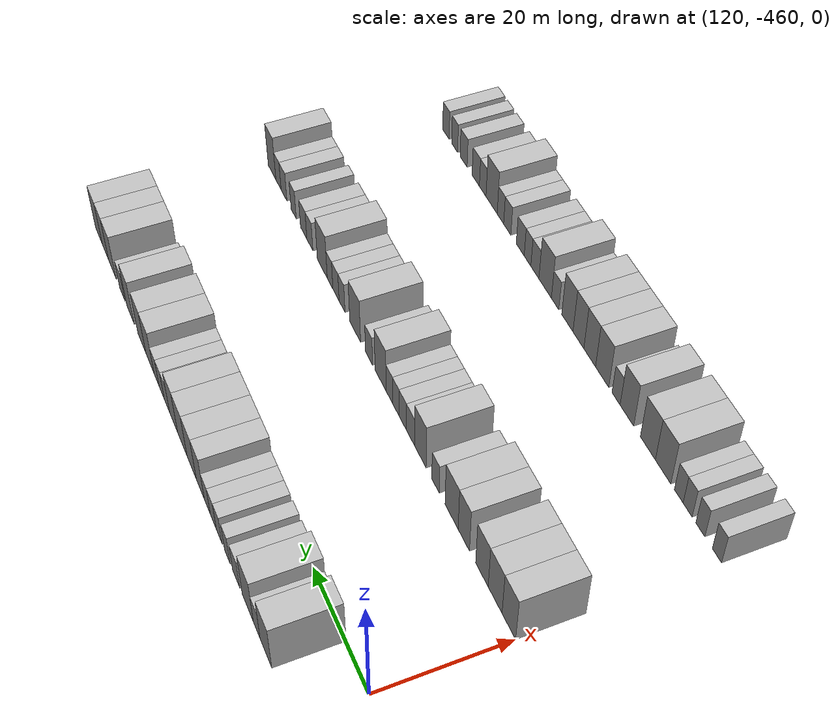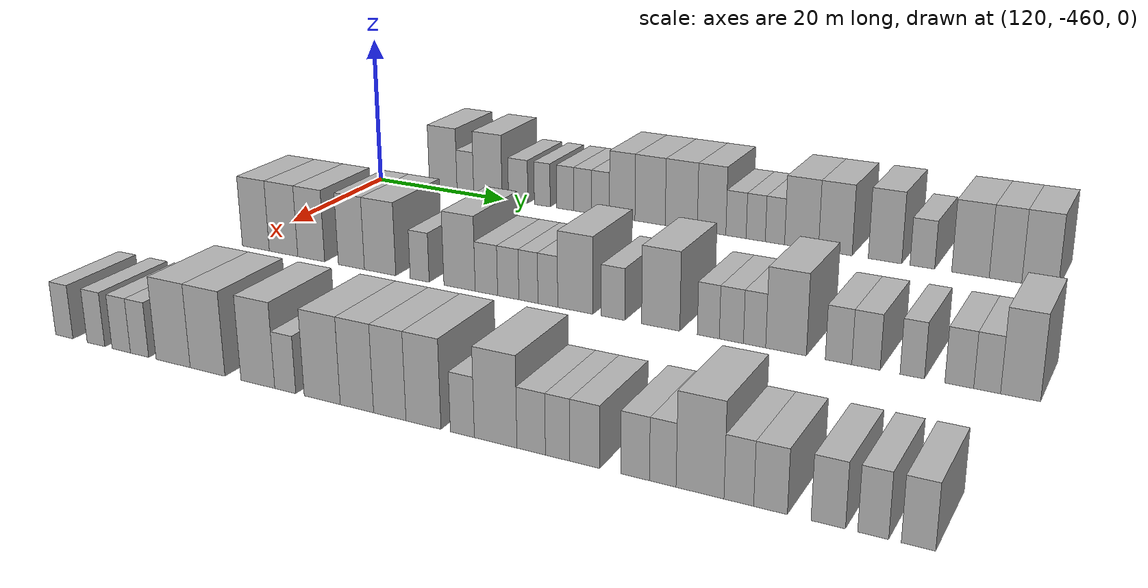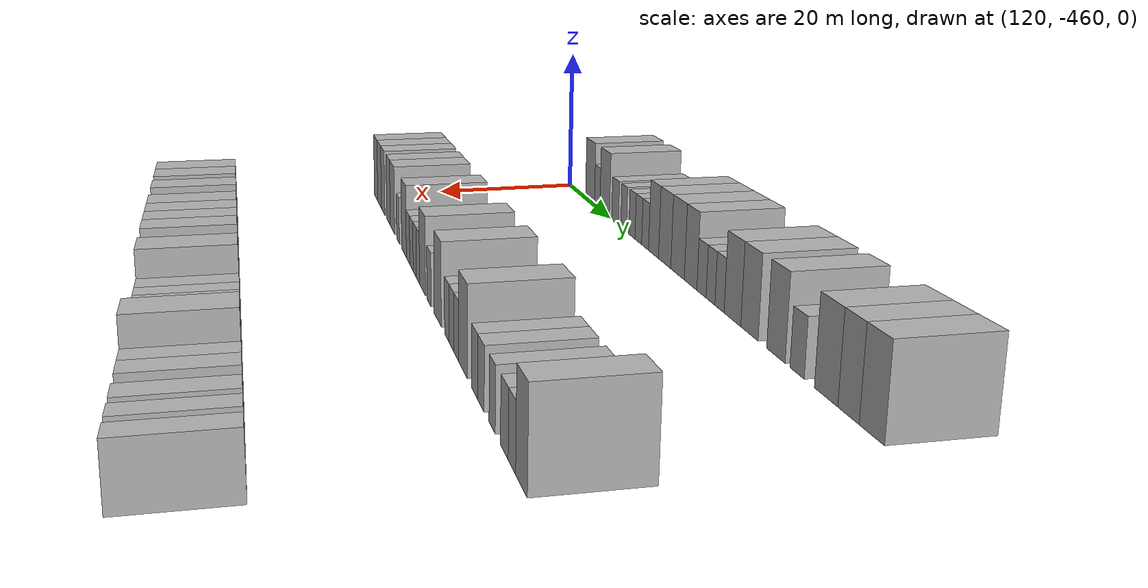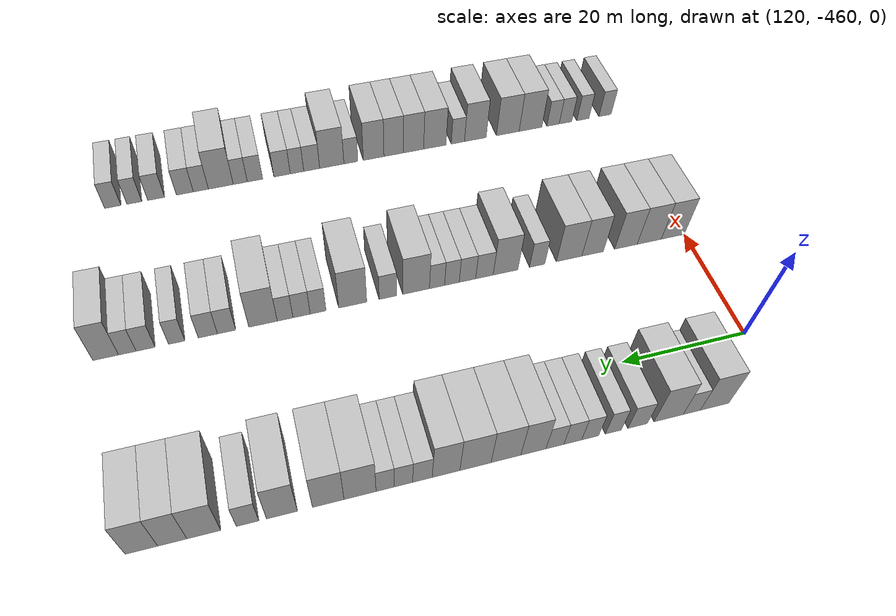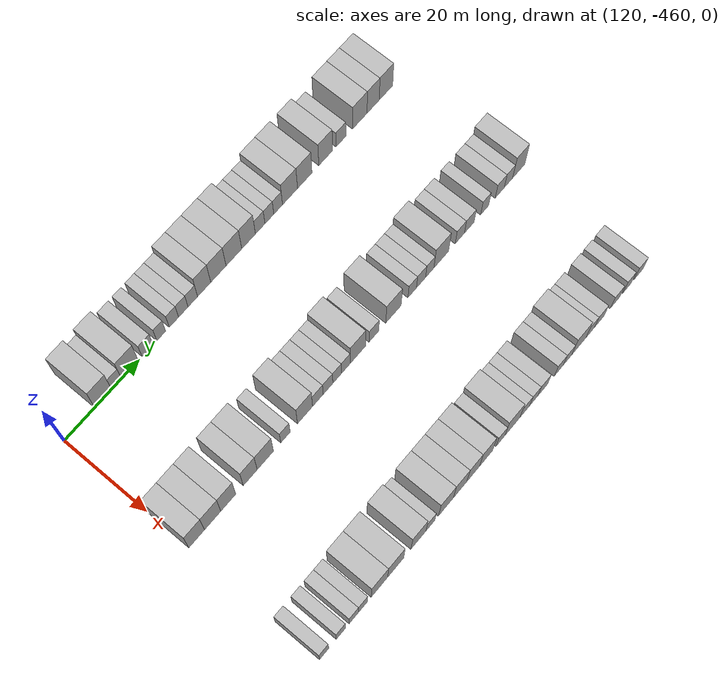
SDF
<sdf version="1.6">
 <world name="default">
  <model name="building_678">
   <static>1</static>
   <pose>115.0000 -449.6989 0 0.000000 0.000000 0.000000</pose>
   <link name="link">
    <pose>0 0 4.50 0 0 0</pose>
    <collision name="collision"><geometry><box><size>10.0000 4.4808 9.0000</size></box></geometry></collision>
    <visual name="visual">
     <cast_shadows>0</cast_shadows>
     <geometry><box><size>10.0000 4.4808 9.0000</size></box></geometry>
     <material>
      <script>
       <uri>model://HANNAS_wall/materials/scripts</uri>
       <uri>model://HANNAS_wall/materials/textures</uri>
       <name>vrc/HANNAS_wall</name>
      </script>
     </material>
    </visual>
   </link>
  </model>
  <model name="building_679">
   <static>1</static>
   <pose>115.0000 -446.1261 0 0.000000 0.000000 0.000000</pose>
   <link name="link">
    <pose>0 0 3.00 0 0 0</pose>
    <collision name="collision"><geometry><box><size>10.0000 2.6648 6.0000</size></box></geometry></collision>
    <visual name="visual">
     <cast_shadows>0</cast_shadows>
     <geometry><box><size>10.0000 2.6648 6.0000</size></box></geometry>
     <material>
      <script>
       <uri>model://HANNAS_wall/materials/scripts</uri>
       <uri>model://HANNAS_wall/materials/textures</uri>
       <name>vrc/HANNAS_wall</name>
      </script>
     </material>
    </visual>
   </link>
  </model>
  <model name="building_680">
   <static>1</static>
   <pose>115.0000 -442.5485 0 0.000000 0.000000 0.000000</pose>
   <link name="link">
    <pose>0 0 4.50 0 0 0</pose>
    <collision name="collision"><geometry><box><size>10.0000 4.4905 9.0000</size></box></geometry></collision>
    <visual name="visual">
     <cast_shadows>0</cast_shadows>
     <geometry><box><size>10.0000 4.4905 9.0000</size></box></geometry>
     <material>
      <script>
       <uri>model://HANNAS_wall/materials/scripts</uri>
       <uri>model://HANNAS_wall/materials/textures</uri>
       <name>vrc/HANNAS_wall</name>
      </script>
     </material>
    </visual>
   </link>
  </model>
  <model name="building_681">
   <static>1</static>
   <pose>115.0000 -437.8097 0 0.000000 0.000000 0.000000</pose>
   <link name="link">
    <pose>0 0 3.00 0 0 0</pose>
    <collision name="collision"><geometry><box><size>10.0000 2.9871 6.0000</size></box></geometry></collision>
    <visual name="visual">
     <cast_shadows>0</cast_shadows>
     <geometry><box><size>10.0000 2.9871 6.0000</size></box></geometry>
     <material>
      <script>
       <uri>model://HANNAS_wall/materials/scripts</uri>
       <uri>model://HANNAS_wall/materials/textures</uri>
       <name>vrc/HANNAS_wall</name>
      </script>
     </material>
    </visual>
   </link>
  </model>
  <model name="building_682">
   <static>1</static>
   <pose>115.0000 -434.1128 0 0.000000 0.000000 0.000000</pose>
   <link name="link">
    <pose>0 0 3.00 0 0 0</pose>
    <collision name="collision"><geometry><box><size>10.0000 2.4067 6.0000</size></box></geometry></collision>
    <visual name="visual">
     <cast_shadows>0</cast_shadows>
     <geometry><box><size>10.0000 2.4067 6.0000</size></box></geometry>
     <material>
      <script>
       <uri>model://HANNAS_wall/materials/scripts</uri>
       <uri>model://HANNAS_wall/materials/textures</uri>
       <name>vrc/HANNAS_wall</name>
      </script>
     </material>
    </visual>
   </link>
  </model>
  <model name="building_683">
   <static>1</static>
   <pose>115.0000 -430.6416 0 0.000000 0.000000 0.000000</pose>
   <link name="link">
    <pose>0 0 3.00 0 0 0</pose>
    <collision name="collision"><geometry><box><size>10.0000 2.5355 6.0000</size></box></geometry></collision>
    <visual name="visual">
     <cast_shadows>0</cast_shadows>
     <geometry><box><size>10.0000 2.5355 6.0000</size></box></geometry>
     <material>
      <script>
       <uri>model://HANNAS_wall/materials/scripts</uri>
       <uri>model://HANNAS_wall/materials/textures</uri>
       <name>vrc/HANNAS_wall</name>
      </script>
     </material>
    </visual>
   </link>
  </model>
  <model name="building_684">
   <static>1</static>
   <pose>115.0000 -428.0606 0 0.000000 0.000000 0.000000</pose>
   <link name="link">
    <pose>0 0 3.00 0 0 0</pose>
    <collision name="collision"><geometry><box><size>10.0000 2.6265 6.0000</size></box></geometry></collision>
    <visual name="visual">
     <cast_shadows>0</cast_shadows>
     <geometry><box><size>10.0000 2.6265 6.0000</size></box></geometry>
     <material>
      <script>
       <uri>model://HANNAS_wall/materials/scripts</uri>
       <uri>model://HANNAS_wall/materials/textures</uri>
       <name>vrc/HANNAS_wall</name>
      </script>
     </material>
    </visual>
   </link>
  </model>
  <model name="building_685">
   <static>1</static>
   <pose>115.0000 -425.4323 0 0.000000 0.000000 0.000000</pose>
   <link name="link">
    <pose>0 0 3.00 0 0 0</pose>
    <collision name="collision"><geometry><box><size>10.0000 2.6303 6.0000</size></box></geometry></collision>
    <visual name="visual">
     <cast_shadows>0</cast_shadows>
     <geometry><box><size>10.0000 2.6303 6.0000</size></box></geometry>
     <material>
      <script>
       <uri>model://HANNAS_wall/materials/scripts</uri>
       <uri>model://HANNAS_wall/materials/textures</uri>
       <name>vrc/HANNAS_wall</name>
      </script>
     </material>
    </visual>
   </link>
  </model>
  <model name="building_686">
   <static>1</static>
   <pose>115.0000 -422.2817 0 0.000000 0.000000 0.000000</pose>
   <link name="link">
    <pose>0 0 4.50 0 0 0</pose>
    <collision name="collision"><geometry><box><size>10.0000 3.6708 9.0000</size></box></geometry></collision>
    <visual name="visual">
     <cast_shadows>0</cast_shadows>
     <geometry><box><size>10.0000 3.6708 9.0000</size></box></geometry>
     <material>
      <script>
       <uri>model://HANNAS_wall/materials/scripts</uri>
       <uri>model://HANNAS_wall/materials/textures</uri>
       <name>vrc/HANNAS_wall</name>
      </script>
     </material>
    </visual>
   </link>
  </model>
  <model name="building_687">
   <static>1</static>
   <pose>115.0000 -418.3024 0 0.000000 0.000000 0.000000</pose>
   <link name="link">
    <pose>0 0 4.50 0 0 0</pose>
    <collision name="collision"><geometry><box><size>10.0000 4.2877 9.0000</size></box></geometry></collision>
    <visual name="visual">
     <cast_shadows>0</cast_shadows>
     <geometry><box><size>10.0000 4.2877 9.0000</size></box></geometry>
     <material>
      <script>
       <uri>model://HANNAS_wall/materials/scripts</uri>
       <uri>model://HANNAS_wall/materials/textures</uri>
       <name>vrc/HANNAS_wall</name>
      </script>
     </material>
    </visual>
   </link>
  </model>
  <model name="building_688">
   <static>1</static>
   <pose>115.0000 -413.9341 0 0.000000 0.000000 0.000000</pose>
   <link name="link">
    <pose>0 0 4.50 0 0 0</pose>
    <collision name="collision"><geometry><box><size>10.0000 4.4489 9.0000</size></box></geometry></collision>
    <visual name="visual">
     <cast_shadows>0</cast_shadows>
     <geometry><box><size>10.0000 4.4489 9.0000</size></box></geometry>
     <material>
      <script>
       <uri>model://HANNAS_wall/materials/scripts</uri>
       <uri>model://HANNAS_wall/materials/textures</uri>
       <name>vrc/HANNAS_wall</name>
      </script>
     </material>
    </visual>
   </link>
  </model>
  <model name="building_689">
   <static>1</static>
   <pose>115.0000 -409.7602 0 0.000000 0.000000 0.000000</pose>
   <link name="link">
    <pose>0 0 4.50 0 0 0</pose>
    <collision name="collision"><geometry><box><size>10.0000 3.8989 9.0000</size></box></geometry></collision>
    <visual name="visual">
     <cast_shadows>0</cast_shadows>
     <geometry><box><size>10.0000 3.8989 9.0000</size></box></geometry>
     <material>
      <script>
       <uri>model://HANNAS_wall/materials/scripts</uri>
       <uri>model://HANNAS_wall/materials/textures</uri>
       <name>vrc/HANNAS_wall</name>
      </script>
     </material>
    </visual>
   </link>
  </model>
  <model name="building_690">
   <static>1</static>
   <pose>115.0000 -406.4546 0 0.000000 0.000000 0.000000</pose>
   <link name="link">
    <pose>0 0 3.00 0 0 0</pose>
    <collision name="collision"><geometry><box><size>10.0000 2.7122 6.0000</size></box></geometry></collision>
    <visual name="visual">
     <cast_shadows>0</cast_shadows>
     <geometry><box><size>10.0000 2.7122 6.0000</size></box></geometry>
     <material>
      <script>
       <uri>model://HANNAS_wall/materials/scripts</uri>
       <uri>model://HANNAS_wall/materials/textures</uri>
       <name>vrc/HANNAS_wall</name>
      </script>
     </material>
    </visual>
   </link>
  </model>
  <model name="building_691">
   <static>1</static>
   <pose>115.0000 -403.8282 0 0.000000 0.000000 0.000000</pose>
   <link name="link">
    <pose>0 0 3.00 0 0 0</pose>
    <collision name="collision"><geometry><box><size>10.0000 2.5408 6.0000</size></box></geometry></collision>
    <visual name="visual">
     <cast_shadows>0</cast_shadows>
     <geometry><box><size>10.0000 2.5408 6.0000</size></box></geometry>
     <material>
      <script>
       <uri>model://HANNAS_wall/materials/scripts</uri>
       <uri>model://HANNAS_wall/materials/textures</uri>
       <name>vrc/HANNAS_wall</name>
      </script>
     </material>
    </visual>
   </link>
  </model>
  <model name="building_692">
   <static>1</static>
   <pose>115.0000 -401.2970 0 0.000000 0.000000 0.000000</pose>
   <link name="link">
    <pose>0 0 3.00 0 0 0</pose>
    <collision name="collision"><geometry><box><size>10.0000 2.5216 6.0000</size></box></geometry></collision>
    <visual name="visual">
     <cast_shadows>0</cast_shadows>
     <geometry><box><size>10.0000 2.5216 6.0000</size></box></geometry>
     <material>
      <script>
       <uri>model://HANNAS_wall/materials/scripts</uri>
       <uri>model://HANNAS_wall/materials/textures</uri>
       <name>vrc/HANNAS_wall</name>
      </script>
     </material>
    </visual>
   </link>
  </model>
  <model name="building_693">
   <static>1</static>
   <pose>115.0000 -397.8549 0 0.000000 0.000000 0.000000</pose>
   <link name="link">
    <pose>0 0 4.50 0 0 0</pose>
    <collision name="collision"><geometry><box><size>10.0000 4.3626 9.0000</size></box></geometry></collision>
    <visual name="visual">
     <cast_shadows>0</cast_shadows>
     <geometry><box><size>10.0000 4.3626 9.0000</size></box></geometry>
     <material>
      <script>
       <uri>model://HANNAS_wall/materials/scripts</uri>
       <uri>model://HANNAS_wall/materials/textures</uri>
       <name>vrc/HANNAS_wall</name>
      </script>
     </material>
    </visual>
   </link>
  </model>
  <model name="building_694">
   <static>1</static>
   <pose>115.0000 -393.5508 0 0.000000 0.000000 0.000000</pose>
   <link name="link">
    <pose>0 0 4.50 0 0 0</pose>
    <collision name="collision"><geometry><box><size>10.0000 4.2455 9.0000</size></box></geometry></collision>
    <visual name="visual">
     <cast_shadows>0</cast_shadows>
     <geometry><box><size>10.0000 4.2455 9.0000</size></box></geometry>
     <material>
      <script>
       <uri>model://HANNAS_wall/materials/scripts</uri>
       <uri>model://HANNAS_wall/materials/textures</uri>
       <name>vrc/HANNAS_wall</name>
      </script>
     </material>
    </visual>
   </link>
  </model>
  <model name="building_695">
   <static>1</static>
   <pose>115.0000 -387.3820 0 0.000000 0.000000 0.000000</pose>
   <link name="link">
    <pose>0 0 4.50 0 0 0</pose>
    <collision name="collision"><geometry><box><size>10.0000 4.0922 9.0000</size></box></geometry></collision>
    <visual name="visual">
     <cast_shadows>0</cast_shadows>
     <geometry><box><size>10.0000 4.0922 9.0000</size></box></geometry>
     <material>
      <script>
       <uri>model://HANNAS_wall/materials/scripts</uri>
       <uri>model://HANNAS_wall/materials/textures</uri>
       <name>vrc/HANNAS_wall</name>
      </script>
     </material>
    </visual>
   </link>
  </model>
  <model name="building_696">
   <static>1</static>
   <pose>115.0000 -382.8612 0 0.000000 0.000000 0.000000</pose>
   <link name="link">
    <pose>0 0 3.00 0 0 0</pose>
    <collision name="collision"><geometry><box><size>10.0000 2.9493 6.0000</size></box></geometry></collision>
    <visual name="visual">
     <cast_shadows>0</cast_shadows>
     <geometry><box><size>10.0000 2.9493 6.0000</size></box></geometry>
     <material>
      <script>
       <uri>model://HANNAS_wall/materials/scripts</uri>
       <uri>model://HANNAS_wall/materials/textures</uri>
       <name>vrc/HANNAS_wall</name>
      </script>
     </material>
    </visual>
   </link>
  </model>
  <model name="building_697">
   <static>1</static>
   <pose>115.0000 -377.2071 0 0.000000 0.000000 0.000000</pose>
   <link name="link">
    <pose>0 0 4.50 0 0 0</pose>
    <collision name="collision"><geometry><box><size>10.0000 4.3589 9.0000</size></box></geometry></collision>
    <visual name="visual">
     <cast_shadows>0</cast_shadows>
     <geometry><box><size>10.0000 4.3589 9.0000</size></box></geometry>
     <material>
      <script>
       <uri>model://HANNAS_wall/materials/scripts</uri>
       <uri>model://HANNAS_wall/materials/textures</uri>
       <name>vrc/HANNAS_wall</name>
      </script>
     </material>
    </visual>
   </link>
  </model>
  <model name="building_698">
   <static>1</static>
   <pose>115.0000 -373.1776 0 0.000000 0.000000 0.000000</pose>
   <link name="link">
    <pose>0 0 4.50 0 0 0</pose>
    <collision name="collision"><geometry><box><size>10.0000 3.7001 9.0000</size></box></geometry></collision>
    <visual name="visual">
     <cast_shadows>0</cast_shadows>
     <geometry><box><size>10.0000 3.7001 9.0000</size></box></geometry>
     <material>
      <script>
       <uri>model://HANNAS_wall/materials/scripts</uri>
       <uri>model://HANNAS_wall/materials/textures</uri>
       <name>vrc/HANNAS_wall</name>
      </script>
     </material>
    </visual>
   </link>
  </model>
  <model name="building_699">
   <static>1</static>
   <pose>115.0000 -369.2862 0 0.000000 0.000000 0.000000</pose>
   <link name="link">
    <pose>0 0 4.50 0 0 0</pose>
    <collision name="collision"><geometry><box><size>10.0000 4.0827 9.0000</size></box></geometry></collision>
    <visual name="visual">
     <cast_shadows>0</cast_shadows>
     <geometry><box><size>10.0000 4.0827 9.0000</size></box></geometry>
     <material>
      <script>
       <uri>model://HANNAS_wall/materials/scripts</uri>
       <uri>model://HANNAS_wall/materials/textures</uri>
       <name>vrc/HANNAS_wall</name>
      </script>
     </material>
    </visual>
   </link>
  </model>
  <model name="building_904">
   <static>1</static>
   <pose>145.0000 -457.9238 0 0.000000 0.000000 0.000000</pose>
   <link name="link">
    <pose>0 0 4.50 0 0 0</pose>
    <collision name="collision"><geometry><box><size>10.0000 4.1524 9.0000</size></box></geometry></collision>
    <visual name="visual">
     <cast_shadows>0</cast_shadows>
     <geometry><box><size>10.0000 4.1524 9.0000</size></box></geometry>
     <material>
      <script>
       <uri>model://HANNAS_wall/materials/scripts</uri>
       <uri>model://HANNAS_wall/materials/textures</uri>
       <name>vrc/HANNAS_wall</name>
      </script>
     </material>
    </visual>
   </link>
  </model>
  <model name="building_905">
   <static>1</static>
   <pose>145.0000 -453.6871 0 0.000000 0.000000 0.000000</pose>
   <link name="link">
    <pose>0 0 4.50 0 0 0</pose>
    <collision name="collision"><geometry><box><size>10.0000 4.3208 9.0000</size></box></geometry></collision>
    <visual name="visual">
     <cast_shadows>0</cast_shadows>
     <geometry><box><size>10.0000 4.3208 9.0000</size></box></geometry>
     <material>
      <script>
       <uri>model://HANNAS_wall/materials/scripts</uri>
       <uri>model://HANNAS_wall/materials/textures</uri>
       <name>vrc/HANNAS_wall</name>
      </script>
     </material>
    </visual>
   </link>
  </model>
  <model name="building_906">
   <static>1</static>
   <pose>145.0000 -449.5275 0 0.000000 0.000000 0.000000</pose>
   <link name="link">
    <pose>0 0 4.50 0 0 0</pose>
    <collision name="collision"><geometry><box><size>10.0000 3.9984 9.0000</size></box></geometry></collision>
    <visual name="visual">
     <cast_shadows>0</cast_shadows>
     <geometry><box><size>10.0000 3.9984 9.0000</size></box></geometry>
     <material>
      <script>
       <uri>model://HANNAS_wall/materials/scripts</uri>
       <uri>model://HANNAS_wall/materials/textures</uri>
       <name>vrc/HANNAS_wall</name>
      </script>
     </material>
    </visual>
   </link>
  </model>
  <model name="building_907">
   <static>1</static>
   <pose>145.0000 -443.6498 0 0.000000 0.000000 0.000000</pose>
   <link name="link">
    <pose>0 0 4.50 0 0 0</pose>
    <collision name="collision"><geometry><box><size>10.0000 3.7570 9.0000</size></box></geometry></collision>
    <visual name="visual">
     <cast_shadows>0</cast_shadows>
     <geometry><box><size>10.0000 3.7570 9.0000</size></box></geometry>
     <material>
      <script>
       <uri>model://HANNAS_wall/materials/scripts</uri>
       <uri>model://HANNAS_wall/materials/textures</uri>
       <name>vrc/HANNAS_wall</name>
      </script>
     </material>
    </visual>
   </link>
  </model>
  <model name="building_908">
   <static>1</static>
   <pose>145.0000 -439.5537 0 0.000000 0.000000 0.000000</pose>
   <link name="link">
    <pose>0 0 4.50 0 0 0</pose>
    <collision name="collision"><geometry><box><size>10.0000 4.4352 9.0000</size></box></geometry></collision>
    <visual name="visual">
     <cast_shadows>0</cast_shadows>
     <geometry><box><size>10.0000 4.4352 9.0000</size></box></geometry>
     <material>
      <script>
       <uri>model://HANNAS_wall/materials/scripts</uri>
       <uri>model://HANNAS_wall/materials/textures</uri>
       <name>vrc/HANNAS_wall</name>
      </script>
     </material>
    </visual>
   </link>
  </model>
  <model name="building_909">
   <static>1</static>
   <pose>145.0000 -434.0340 0 0.000000 0.000000 0.000000</pose>
   <link name="link">
    <pose>0 0 3.00 0 0 0</pose>
    <collision name="collision"><geometry><box><size>10.0000 2.6040 6.0000</size></box></geometry></collision>
    <visual name="visual">
     <cast_shadows>0</cast_shadows>
     <geometry><box><size>10.0000 2.6040 6.0000</size></box></geometry>
     <material>
      <script>
       <uri>model://HANNAS_wall/materials/scripts</uri>
       <uri>model://HANNAS_wall/materials/textures</uri>
       <name>vrc/HANNAS_wall</name>
      </script>
     </material>
    </visual>
   </link>
  </model>
  <model name="building_910">
   <static>1</static>
   <pose>145.0000 -428.6419 0 0.000000 0.000000 0.000000</pose>
   <link name="link">
    <pose>0 0 4.50 0 0 0</pose>
    <collision name="collision"><geometry><box><size>10.0000 4.1803 9.0000</size></box></geometry></collision>
    <visual name="visual">
     <cast_shadows>0</cast_shadows>
     <geometry><box><size>10.0000 4.1803 9.0000</size></box></geometry>
     <material>
      <script>
       <uri>model://HANNAS_wall/materials/scripts</uri>
       <uri>model://HANNAS_wall/materials/textures</uri>
       <name>vrc/HANNAS_wall</name>
      </script>
     </material>
    </visual>
   </link>
  </model>
  <model name="building_911">
   <static>1</static>
   <pose>145.0000 -425.0823 0 0.000000 0.000000 0.000000</pose>
   <link name="link">
    <pose>0 0 3.00 0 0 0</pose>
    <collision name="collision"><geometry><box><size>10.0000 2.9387 6.0000</size></box></geometry></collision>
    <visual name="visual">
     <cast_shadows>0</cast_shadows>
     <geometry><box><size>10.0000 2.9387 6.0000</size></box></geometry>
     <material>
      <script>
       <uri>model://HANNAS_wall/materials/scripts</uri>
       <uri>model://HANNAS_wall/materials/textures</uri>
       <name>vrc/HANNAS_wall</name>
      </script>
     </material>
    </visual>
   </link>
  </model>
  <model name="building_912">
   <static>1</static>
   <pose>145.0000 -422.2434 0 0.000000 0.000000 0.000000</pose>
   <link name="link">
    <pose>0 0 3.00 0 0 0</pose>
    <collision name="collision"><geometry><box><size>10.0000 2.7391 6.0000</size></box></geometry></collision>
    <visual name="visual">
     <cast_shadows>0</cast_shadows>
     <geometry><box><size>10.0000 2.7391 6.0000</size></box></geometry>
     <material>
      <script>
       <uri>model://HANNAS_wall/materials/scripts</uri>
       <uri>model://HANNAS_wall/materials/textures</uri>
       <name>vrc/HANNAS_wall</name>
      </script>
     </material>
    </visual>
   </link>
  </model>
  <model name="building_913">
   <static>1</static>
   <pose>145.0000 -419.6566 0 0.000000 0.000000 0.000000</pose>
   <link name="link">
    <pose>0 0 3.00 0 0 0</pose>
    <collision name="collision"><geometry><box><size>10.0000 2.4344 6.0000</size></box></geometry></collision>
    <visual name="visual">
     <cast_shadows>0</cast_shadows>
     <geometry><box><size>10.0000 2.4344 6.0000</size></box></geometry>
     <material>
      <script>
       <uri>model://HANNAS_wall/materials/scripts</uri>
       <uri>model://HANNAS_wall/materials/textures</uri>
       <name>vrc/HANNAS_wall</name>
      </script>
     </material>
    </visual>
   </link>
  </model>
  <model name="building_914">
   <static>1</static>
   <pose>145.0000 -417.1963 0 0.000000 0.000000 0.000000</pose>
   <link name="link">
    <pose>0 0 3.00 0 0 0</pose>
    <collision name="collision"><geometry><box><size>10.0000 2.4862 6.0000</size></box></geometry></collision>
    <visual name="visual">
     <cast_shadows>0</cast_shadows>
     <geometry><box><size>10.0000 2.4862 6.0000</size></box></geometry>
     <material>
      <script>
       <uri>model://HANNAS_wall/materials/scripts</uri>
       <uri>model://HANNAS_wall/materials/textures</uri>
       <name>vrc/HANNAS_wall</name>
      </script>
     </material>
    </visual>
   </link>
  </model>
  <model name="building_915">
   <static>1</static>
   <pose>145.0000 -413.7742 0 0.000000 0.000000 0.000000</pose>
   <link name="link">
    <pose>0 0 4.50 0 0 0</pose>
    <collision name="collision"><geometry><box><size>10.0000 4.3580 9.0000</size></box></geometry></collision>
    <visual name="visual">
     <cast_shadows>0</cast_shadows>
     <geometry><box><size>10.0000 4.3580 9.0000</size></box></geometry>
     <material>
      <script>
       <uri>model://HANNAS_wall/materials/scripts</uri>
       <uri>model://HANNAS_wall/materials/textures</uri>
       <name>vrc/HANNAS_wall</name>
      </script>
     </material>
    </visual>
   </link>
  </model>
  <model name="building_916">
   <static>1</static>
   <pose>145.0000 -409.1860 0 0.000000 0.000000 0.000000</pose>
   <link name="link">
    <pose>0 0 3.00 0 0 0</pose>
    <collision name="collision"><geometry><box><size>10.0000 2.8185 6.0000</size></box></geometry></collision>
    <visual name="visual">
     <cast_shadows>0</cast_shadows>
     <geometry><box><size>10.0000 2.8185 6.0000</size></box></geometry>
     <material>
      <script>
       <uri>model://HANNAS_wall/materials/scripts</uri>
       <uri>model://HANNAS_wall/materials/textures</uri>
       <name>vrc/HANNAS_wall</name>
      </script>
     </material>
    </visual>
   </link>
  </model>
  <model name="building_917">
   <static>1</static>
   <pose>145.0000 -403.5467 0 0.000000 0.000000 0.000000</pose>
   <link name="link">
    <pose>0 0 4.50 0 0 0</pose>
    <collision name="collision"><geometry><box><size>10.0000 4.4602 9.0000</size></box></geometry></collision>
    <visual name="visual">
     <cast_shadows>0</cast_shadows>
     <geometry><box><size>10.0000 4.4602 9.0000</size></box></geometry>
     <material>
      <script>
       <uri>model://HANNAS_wall/materials/scripts</uri>
       <uri>model://HANNAS_wall/materials/textures</uri>
       <name>vrc/HANNAS_wall</name>
      </script>
     </material>
    </visual>
   </link>
  </model>
  <model name="building_918">
   <static>1</static>
   <pose>145.0000 -398.0712 0 0.000000 0.000000 0.000000</pose>
   <link name="link">
    <pose>0 0 3.00 0 0 0</pose>
    <collision name="collision"><geometry><box><size>10.0000 2.4908 6.0000</size></box></geometry></collision>
    <visual name="visual">
     <cast_shadows>0</cast_shadows>
     <geometry><box><size>10.0000 2.4908 6.0000</size></box></geometry>
     <material>
      <script>
       <uri>model://HANNAS_wall/materials/scripts</uri>
       <uri>model://HANNAS_wall/materials/textures</uri>
       <name>vrc/HANNAS_wall</name>
      </script>
     </material>
    </visual>
   </link>
  </model>
  <model name="building_919">
   <static>1</static>
   <pose>145.0000 -395.4843 0 0.000000 0.000000 0.000000</pose>
   <link name="link">
    <pose>0 0 3.00 0 0 0</pose>
    <collision name="collision"><geometry><box><size>10.0000 2.6829 6.0000</size></box></geometry></collision>
    <visual name="visual">
     <cast_shadows>0</cast_shadows>
     <geometry><box><size>10.0000 2.6829 6.0000</size></box></geometry>
     <material>
      <script>
       <uri>model://HANNAS_wall/materials/scripts</uri>
       <uri>model://HANNAS_wall/materials/textures</uri>
       <name>vrc/HANNAS_wall</name>
      </script>
     </material>
    </visual>
   </link>
  </model>
  <model name="building_920">
   <static>1</static>
   <pose>145.0000 -392.9195 0 0.000000 0.000000 0.000000</pose>
   <link name="link">
    <pose>0 0 3.00 0 0 0</pose>
    <collision name="collision"><geometry><box><size>10.0000 2.4467 6.0000</size></box></geometry></collision>
    <visual name="visual">
     <cast_shadows>0</cast_shadows>
     <geometry><box><size>10.0000 2.4467 6.0000</size></box></geometry>
     <material>
      <script>
       <uri>model://HANNAS_wall/materials/scripts</uri>
       <uri>model://HANNAS_wall/materials/textures</uri>
       <name>vrc/HANNAS_wall</name>
      </script>
     </material>
    </visual>
   </link>
  </model>
  <model name="building_921">
   <static>1</static>
   <pose>145.0000 -389.5043 0 0.000000 0.000000 0.000000</pose>
   <link name="link">
    <pose>0 0 4.50 0 0 0</pose>
    <collision name="collision"><geometry><box><size>10.0000 4.3836 9.0000</size></box></geometry></collision>
    <visual name="visual">
     <cast_shadows>0</cast_shadows>
     <geometry><box><size>10.0000 4.3836 9.0000</size></box></geometry>
     <material>
      <script>
       <uri>model://HANNAS_wall/materials/scripts</uri>
       <uri>model://HANNAS_wall/materials/textures</uri>
       <name>vrc/HANNAS_wall</name>
      </script>
     </material>
    </visual>
   </link>
  </model>
  <model name="building_922">
   <static>1</static>
   <pose>145.0000 -383.9293 0 0.000000 0.000000 0.000000</pose>
   <link name="link">
    <pose>0 0 3.00 0 0 0</pose>
    <collision name="collision"><geometry><box><size>10.0000 2.7663 6.0000</size></box></geometry></collision>
    <visual name="visual">
     <cast_shadows>0</cast_shadows>
     <geometry><box><size>10.0000 2.7663 6.0000</size></box></geometry>
     <material>
      <script>
       <uri>model://HANNAS_wall/materials/scripts</uri>
       <uri>model://HANNAS_wall/materials/textures</uri>
       <name>vrc/HANNAS_wall</name>
      </script>
     </material>
    </visual>
   </link>
  </model>
  <model name="building_923">
   <static>1</static>
   <pose>145.0000 -381.0926 0 0.000000 0.000000 0.000000</pose>
   <link name="link">
    <pose>0 0 3.00 0 0 0</pose>
    <collision name="collision"><geometry><box><size>10.0000 2.9071 6.0000</size></box></geometry></collision>
    <visual name="visual">
     <cast_shadows>0</cast_shadows>
     <geometry><box><size>10.0000 2.9071 6.0000</size></box></geometry>
     <material>
      <script>
       <uri>model://HANNAS_wall/materials/scripts</uri>
       <uri>model://HANNAS_wall/materials/textures</uri>
       <name>vrc/HANNAS_wall</name>
      </script>
     </material>
    </visual>
   </link>
  </model>
  <model name="building_924">
   <static>1</static>
   <pose>145.0000 -376.4182 0 0.000000 0.000000 0.000000</pose>
   <link name="link">
    <pose>0 0 3.00 0 0 0</pose>
    <collision name="collision"><geometry><box><size>10.0000 2.4418 6.0000</size></box></geometry></collision>
    <visual name="visual">
     <cast_shadows>0</cast_shadows>
     <geometry><box><size>10.0000 2.4418 6.0000</size></box></geometry>
     <material>
      <script>
       <uri>model://HANNAS_wall/materials/scripts</uri>
       <uri>model://HANNAS_wall/materials/textures</uri>
       <name>vrc/HANNAS_wall</name>
      </script>
     </material>
    </visual>
   </link>
  </model>
  <model name="building_925">
   <static>1</static>
   <pose>145.0000 -371.7977 0 0.000000 0.000000 0.000000</pose>
   <link name="link">
    <pose>0 0 3.00 0 0 0</pose>
    <collision name="collision"><geometry><box><size>10.0000 2.7991 6.0000</size></box></geometry></collision>
    <visual name="visual">
     <cast_shadows>0</cast_shadows>
     <geometry><box><size>10.0000 2.7991 6.0000</size></box></geometry>
     <material>
      <script>
       <uri>model://HANNAS_wall/materials/scripts</uri>
       <uri>model://HANNAS_wall/materials/textures</uri>
       <name>vrc/HANNAS_wall</name>
      </script>
     </material>
    </visual>
   </link>
  </model>
  <model name="building_926">
   <static>1</static>
   <pose>145.0000 -369.1200 0 0.000000 0.000000 0.000000</pose>
   <link name="link">
    <pose>0 0 3.00 0 0 0</pose>
    <collision name="collision"><geometry><box><size>10.0000 2.5564 6.0000</size></box></geometry></collision>
    <visual name="visual">
     <cast_shadows>0</cast_shadows>
     <geometry><box><size>10.0000 2.5564 6.0000</size></box></geometry>
     <material>
      <script>
       <uri>model://HANNAS_wall/materials/scripts</uri>
       <uri>model://HANNAS_wall/materials/textures</uri>
       <name>vrc/HANNAS_wall</name>
      </script>
     </material>
    </visual>
   </link>
  </model>
  <model name="building_927">
   <static>1</static>
   <pose>145.0000 -365.9656 0 0.000000 0.000000 0.000000</pose>
   <link name="link">
    <pose>0 0 4.50 0 0 0</pose>
    <collision name="collision"><geometry><box><size>10.0000 3.7524 9.0000</size></box></geometry></collision>
    <visual name="visual">
     <cast_shadows>0</cast_shadows>
     <geometry><box><size>10.0000 3.7524 9.0000</size></box></geometry>
     <material>
      <script>
       <uri>model://HANNAS_wall/materials/scripts</uri>
       <uri>model://HANNAS_wall/materials/textures</uri>
       <name>vrc/HANNAS_wall</name>
      </script>
     </material>
    </visual>
   </link>
  </model>
  <model name="building_1123">
   <static>1</static>
   <pose>175.0000 -458.7747 0 0.000000 0.000000 0.000000</pose>
   <link name="link">
    <pose>0 0 3.00 0 0 0</pose>
    <collision name="collision"><geometry><box><size>10.0000 2.4506 6.0000</size></box></geometry></collision>
    <visual name="visual">
     <cast_shadows>0</cast_shadows>
     <geometry><box><size>10.0000 2.4506 6.0000</size></box></geometry>
     <material>
      <script>
       <uri>model://HANNAS_wall/materials/scripts</uri>
       <uri>model://HANNAS_wall/materials/textures</uri>
       <name>vrc/HANNAS_wall</name>
      </script>
     </material>
    </visual>
   </link>
  </model>
  <model name="building_1124">
   <static>1</static>
   <pose>175.0000 -454.3264 0 0.000000 0.000000 0.000000</pose>
   <link name="link">
    <pose>0 0 3.00 0 0 0</pose>
    <collision name="collision"><geometry><box><size>10.0000 2.4460 6.0000</size></box></geometry></collision>
    <visual name="visual">
     <cast_shadows>0</cast_shadows>
     <geometry><box><size>10.0000 2.4460 6.0000</size></box></geometry>
     <material>
      <script>
       <uri>model://HANNAS_wall/materials/scripts</uri>
       <uri>model://HANNAS_wall/materials/textures</uri>
       <name>vrc/HANNAS_wall</name>
      </script>
     </material>
    </visual>
   </link>
  </model>
  <model name="building_1125">
   <static>1</static>
   <pose>175.0000 -450.8510 0 0.000000 0.000000 0.000000</pose>
   <link name="link">
    <pose>0 0 3.00 0 0 0</pose>
    <collision name="collision"><geometry><box><size>10.0000 2.5049 6.0000</size></box></geometry></collision>
    <visual name="visual">
     <cast_shadows>0</cast_shadows>
     <geometry><box><size>10.0000 2.5049 6.0000</size></box></geometry>
     <material>
      <script>
       <uri>model://HANNAS_wall/materials/scripts</uri>
       <uri>model://HANNAS_wall/materials/textures</uri>
       <name>vrc/HANNAS_wall</name>
      </script>
     </material>
    </visual>
   </link>
  </model>
  <model name="building_1126">
   <static>1</static>
   <pose>175.0000 -448.3788 0 0.000000 0.000000 0.000000</pose>
   <link name="link">
    <pose>0 0 3.00 0 0 0</pose>
    <collision name="collision"><geometry><box><size>10.0000 2.4396 6.0000</size></box></geometry></collision>
    <visual name="visual">
     <cast_shadows>0</cast_shadows>
     <geometry><box><size>10.0000 2.4396 6.0000</size></box></geometry>
     <material>
      <script>
       <uri>model://HANNAS_wall/materials/scripts</uri>
       <uri>model://HANNAS_wall/materials/textures</uri>
       <name>vrc/HANNAS_wall</name>
      </script>
     </material>
    </visual>
   </link>
  </model>
  <model name="building_1127">
   <static>1</static>
   <pose>175.0000 -443.9301 0 0.000000 0.000000 0.000000</pose>
   <link name="link">
    <pose>0 0 4.50 0 0 0</pose>
    <collision name="collision"><geometry><box><size>10.0000 4.4577 9.0000</size></box></geometry></collision>
    <visual name="visual">
     <cast_shadows>0</cast_shadows>
     <geometry><box><size>10.0000 4.4577 9.0000</size></box></geometry>
     <material>
      <script>
       <uri>model://HANNAS_wall/materials/scripts</uri>
       <uri>model://HANNAS_wall/materials/textures</uri>
       <name>vrc/HANNAS_wall</name>
      </script>
     </material>
    </visual>
   </link>
  </model>
  <model name="building_1128">
   <static>1</static>
   <pose>175.0000 -439.4912 0 0.000000 0.000000 0.000000</pose>
   <link name="link">
    <pose>0 0 4.50 0 0 0</pose>
    <collision name="collision"><geometry><box><size>10.0000 4.4202 9.0000</size></box></geometry></collision>
    <visual name="visual">
     <cast_shadows>0</cast_shadows>
     <geometry><box><size>10.0000 4.4202 9.0000</size></box></geometry>
     <material>
      <script>
       <uri>model://HANNAS_wall/materials/scripts</uri>
       <uri>model://HANNAS_wall/materials/textures</uri>
       <name>vrc/HANNAS_wall</name>
      </script>
     </material>
    </visual>
   </link>
  </model>
  <model name="building_1129">
   <static>1</static>
   <pose>175.0000 -433.2057 0 0.000000 0.000000 0.000000</pose>
   <link name="link">
    <pose>0 0 4.50 0 0 0</pose>
    <collision name="collision"><geometry><box><size>10.0000 4.1509 9.0000</size></box></geometry></collision>
    <visual name="visual">
     <cast_shadows>0</cast_shadows>
     <geometry><box><size>10.0000 4.1509 9.0000</size></box></geometry>
     <material>
      <script>
       <uri>model://HANNAS_wall/materials/scripts</uri>
       <uri>model://HANNAS_wall/materials/textures</uri>
       <name>vrc/HANNAS_wall</name>
      </script>
     </material>
    </visual>
   </link>
  </model>
  <model name="building_1130">
   <static>1</static>
   <pose>175.0000 -429.8697 0 0.000000 0.000000 0.000000</pose>
   <link name="link">
    <pose>0 0 3.00 0 0 0</pose>
    <collision name="collision"><geometry><box><size>10.0000 2.5210 6.0000</size></box></geometry></collision>
    <visual name="visual">
     <cast_shadows>0</cast_shadows>
     <geometry><box><size>10.0000 2.5210 6.0000</size></box></geometry>
     <material>
      <script>
       <uri>model://HANNAS_wall/materials/scripts</uri>
       <uri>model://HANNAS_wall/materials/textures</uri>
       <name>vrc/HANNAS_wall</name>
      </script>
     </material>
    </visual>
   </link>
  </model>
  <model name="building_1131">
   <static>1</static>
   <pose>175.0000 -425.5007 0 0.000000 0.000000 0.000000</pose>
   <link name="link">
    <pose>0 0 4.50 0 0 0</pose>
    <collision name="collision"><geometry><box><size>10.0000 4.2170 9.0000</size></box></geometry></collision>
    <visual name="visual">
     <cast_shadows>0</cast_shadows>
     <geometry><box><size>10.0000 4.2170 9.0000</size></box></geometry>
     <material>
      <script>
       <uri>model://HANNAS_wall/materials/scripts</uri>
       <uri>model://HANNAS_wall/materials/textures</uri>
       <name>vrc/HANNAS_wall</name>
      </script>
     </material>
    </visual>
   </link>
  </model>
  <model name="building_1132">
   <static>1</static>
   <pose>175.0000 -421.4910 0 0.000000 0.000000 0.000000</pose>
   <link name="link">
    <pose>0 0 4.50 0 0 0</pose>
    <collision name="collision"><geometry><box><size>10.0000 3.8022 9.0000</size></box></geometry></collision>
    <visual name="visual">
     <cast_shadows>0</cast_shadows>
     <geometry><box><size>10.0000 3.8022 9.0000</size></box></geometry>
     <material>
      <script>
       <uri>model://HANNAS_wall/materials/scripts</uri>
       <uri>model://HANNAS_wall/materials/textures</uri>
       <name>vrc/HANNAS_wall</name>
      </script>
     </material>
    </visual>
   </link>
  </model>
  <model name="building_1133">
   <static>1</static>
   <pose>175.0000 -417.7866 0 0.000000 0.000000 0.000000</pose>
   <link name="link">
    <pose>0 0 4.50 0 0 0</pose>
    <collision name="collision"><geometry><box><size>10.0000 3.6067 9.0000</size></box></geometry></collision>
    <visual name="visual">
     <cast_shadows>0</cast_shadows>
     <geometry><box><size>10.0000 3.6067 9.0000</size></box></geometry>
     <material>
      <script>
       <uri>model://HANNAS_wall/materials/scripts</uri>
       <uri>model://HANNAS_wall/materials/textures</uri>
       <name>vrc/HANNAS_wall</name>
      </script>
     </material>
    </visual>
   </link>
  </model>
  <model name="building_1134">
   <static>1</static>
   <pose>175.0000 -414.0810 0 0.000000 0.000000 0.000000</pose>
   <link name="link">
    <pose>0 0 4.50 0 0 0</pose>
    <collision name="collision"><geometry><box><size>10.0000 3.8046 9.0000</size></box></geometry></collision>
    <visual name="visual">
     <cast_shadows>0</cast_shadows>
     <geometry><box><size>10.0000 3.8046 9.0000</size></box></geometry>
     <material>
      <script>
       <uri>model://HANNAS_wall/materials/scripts</uri>
       <uri>model://HANNAS_wall/materials/textures</uri>
       <name>vrc/HANNAS_wall</name>
      </script>
     </material>
    </visual>
   </link>
  </model>
  <model name="building_1135">
   <static>1</static>
   <pose>175.0000 -409.9078 0 0.000000 0.000000 0.000000</pose>
   <link name="link">
    <pose>0 0 3.00 0 0 0</pose>
    <collision name="collision"><geometry><box><size>10.0000 2.5418 6.0000</size></box></geometry></collision>
    <visual name="visual">
     <cast_shadows>0</cast_shadows>
     <geometry><box><size>10.0000 2.5418 6.0000</size></box></geometry>
     <material>
      <script>
       <uri>model://HANNAS_wall/materials/scripts</uri>
       <uri>model://HANNAS_wall/materials/textures</uri>
       <name>vrc/HANNAS_wall</name>
      </script>
     </material>
    </visual>
   </link>
  </model>
  <model name="building_1136">
   <static>1</static>
   <pose>175.0000 -406.4353 0 0.000000 0.000000 0.000000</pose>
   <link name="link">
    <pose>0 0 4.50 0 0 0</pose>
    <collision name="collision"><geometry><box><size>10.0000 4.4032 9.0000</size></box></geometry></collision>
    <visual name="visual">
     <cast_shadows>0</cast_shadows>
     <geometry><box><size>10.0000 4.4032 9.0000</size></box></geometry>
     <material>
      <script>
       <uri>model://HANNAS_wall/materials/scripts</uri>
       <uri>model://HANNAS_wall/materials/textures</uri>
       <name>vrc/HANNAS_wall</name>
      </script>
     </material>
    </visual>
   </link>
  </model>
  <model name="building_1137">
   <static>1</static>
   <pose>175.0000 -402.7999 0 0.000000 0.000000 0.000000</pose>
   <link name="link">
    <pose>0 0 3.00 0 0 0</pose>
    <collision name="collision"><geometry><box><size>10.0000 2.8676 6.0000</size></box></geometry></collision>
    <visual name="visual">
     <cast_shadows>0</cast_shadows>
     <geometry><box><size>10.0000 2.8676 6.0000</size></box></geometry>
     <material>
      <script>
       <uri>model://HANNAS_wall/materials/scripts</uri>
       <uri>model://HANNAS_wall/materials/textures</uri>
       <name>vrc/HANNAS_wall</name>
      </script>
     </material>
    </visual>
   </link>
  </model>
  <model name="building_1138">
   <static>1</static>
   <pose>175.0000 -400.1571 0 0.000000 0.000000 0.000000</pose>
   <link name="link">
    <pose>0 0 3.00 0 0 0</pose>
    <collision name="collision"><geometry><box><size>10.0000 2.4179 6.0000</size></box></geometry></collision>
    <visual name="visual">
     <cast_shadows>0</cast_shadows>
     <geometry><box><size>10.0000 2.4179 6.0000</size></box></geometry>
     <material>
      <script>
       <uri>model://HANNAS_wall/materials/scripts</uri>
       <uri>model://HANNAS_wall/materials/textures</uri>
       <name>vrc/HANNAS_wall</name>
      </script>
     </material>
    </visual>
   </link>
  </model>
  <model name="building_1139">
   <static>1</static>
   <pose>175.0000 -397.4937 0 0.000000 0.000000 0.000000</pose>
   <link name="link">
    <pose>0 0 3.00 0 0 0</pose>
    <collision name="collision"><geometry><box><size>10.0000 2.9090 6.0000</size></box></geometry></collision>
    <visual name="visual">
     <cast_shadows>0</cast_shadows>
     <geometry><box><size>10.0000 2.9090 6.0000</size></box></geometry>
     <material>
      <script>
       <uri>model://HANNAS_wall/materials/scripts</uri>
       <uri>model://HANNAS_wall/materials/textures</uri>
       <name>vrc/HANNAS_wall</name>
      </script>
     </material>
    </visual>
   </link>
  </model>
  <model name="building_1140">
   <static>1</static>
   <pose>175.0000 -392.6853 0 0.000000 0.000000 0.000000</pose>
   <link name="link">
    <pose>0 0 3.00 0 0 0</pose>
    <collision name="collision"><geometry><box><size>10.0000 2.7078 6.0000</size></box></geometry></collision>
    <visual name="visual">
     <cast_shadows>0</cast_shadows>
     <geometry><box><size>10.0000 2.7078 6.0000</size></box></geometry>
     <material>
      <script>
       <uri>model://HANNAS_wall/materials/scripts</uri>
       <uri>model://HANNAS_wall/materials/textures</uri>
       <name>vrc/HANNAS_wall</name>
      </script>
     </material>
    </visual>
   </link>
  </model>
  <model name="building_1141">
   <static>1</static>
   <pose>175.0000 -390.1000 0 0.000000 0.000000 0.000000</pose>
   <link name="link">
    <pose>0 0 3.00 0 0 0</pose>
    <collision name="collision"><geometry><box><size>10.0000 2.4627 6.0000</size></box></geometry></collision>
    <visual name="visual">
     <cast_shadows>0</cast_shadows>
     <geometry><box><size>10.0000 2.4627 6.0000</size></box></geometry>
     <material>
      <script>
       <uri>model://HANNAS_wall/materials/scripts</uri>
       <uri>model://HANNAS_wall/materials/textures</uri>
       <name>vrc/HANNAS_wall</name>
      </script>
     </material>
    </visual>
   </link>
  </model>
  <model name="building_1142">
   <static>1</static>
   <pose>175.0000 -386.7049 0 0.000000 0.000000 0.000000</pose>
   <link name="link">
    <pose>0 0 4.50 0 0 0</pose>
    <collision name="collision"><geometry><box><size>10.0000 4.3276 9.0000</size></box></geometry></collision>
    <visual name="visual">
     <cast_shadows>0</cast_shadows>
     <geometry><box><size>10.0000 4.3276 9.0000</size></box></geometry>
     <material>
      <script>
       <uri>model://HANNAS_wall/materials/scripts</uri>
       <uri>model://HANNAS_wall/materials/textures</uri>
       <name>vrc/HANNAS_wall</name>
      </script>
     </material>
    </visual>
   </link>
  </model>
  <model name="building_1143">
   <static>1</static>
   <pose>175.0000 -383.2349 0 0.000000 0.000000 0.000000</pose>
   <link name="link">
    <pose>0 0 3.00 0 0 0</pose>
    <collision name="collision"><geometry><box><size>10.0000 2.6123 6.0000</size></box></geometry></collision>
    <visual name="visual">
     <cast_shadows>0</cast_shadows>
     <geometry><box><size>10.0000 2.6123 6.0000</size></box></geometry>
     <material>
      <script>
       <uri>model://HANNAS_wall/materials/scripts</uri>
       <uri>model://HANNAS_wall/materials/textures</uri>
       <name>vrc/HANNAS_wall</name>
      </script>
     </material>
    </visual>
   </link>
  </model>
  <model name="building_1144">
   <static>1</static>
   <pose>175.0000 -380.4716 0 0.000000 0.000000 0.000000</pose>
   <link name="link">
    <pose>0 0 3.00 0 0 0</pose>
    <collision name="collision"><geometry><box><size>10.0000 2.9144 6.0000</size></box></geometry></collision>
    <visual name="visual">
     <cast_shadows>0</cast_shadows>
     <geometry><box><size>10.0000 2.9144 6.0000</size></box></geometry>
     <material>
      <script>
       <uri>model://HANNAS_wall/materials/scripts</uri>
       <uri>model://HANNAS_wall/materials/textures</uri>
       <name>vrc/HANNAS_wall</name>
      </script>
     </material>
    </visual>
   </link>
  </model>
  <model name="building_1145">
   <static>1</static>
   <pose>175.0000 -375.5781 0 0.000000 0.000000 0.000000</pose>
   <link name="link">
    <pose>0 0 3.00 0 0 0</pose>
    <collision name="collision"><geometry><box><size>10.0000 2.8726 6.0000</size></box></geometry></collision>
    <visual name="visual">
     <cast_shadows>0</cast_shadows>
     <geometry><box><size>10.0000 2.8726 6.0000</size></box></geometry>
     <material>
      <script>
       <uri>model://HANNAS_wall/materials/scripts</uri>
       <uri>model://HANNAS_wall/materials/textures</uri>
       <name>vrc/HANNAS_wall</name>
      </script>
     </material>
    </visual>
   </link>
  </model>
  <model name="building_1146">
   <static>1</static>
   <pose>175.0000 -371.8849 0 0.000000 0.000000 0.000000</pose>
   <link name="link">
    <pose>0 0 3.00 0 0 0</pose>
    <collision name="collision"><geometry><box><size>10.0000 2.5139 6.0000</size></box></geometry></collision>
    <visual name="visual">
     <cast_shadows>0</cast_shadows>
     <geometry><box><size>10.0000 2.5139 6.0000</size></box></geometry>
     <material>
      <script>
       <uri>model://HANNAS_wall/materials/scripts</uri>
       <uri>model://HANNAS_wall/materials/textures</uri>
       <name>vrc/HANNAS_wall</name>
      </script>
     </material>
    </visual>
   </link>
  </model>
  <model name="building_1147">
   <static>1</static>
   <pose>175.0000 -368.2669 0 0.000000 0.000000 0.000000</pose>
   <link name="link">
    <pose>0 0 3.00 0 0 0</pose>
    <collision name="collision"><geometry><box><size>10.0000 2.7222 6.0000</size></box></geometry></collision>
    <visual name="visual">
     <cast_shadows>0</cast_shadows>
     <geometry><box><size>10.0000 2.7222 6.0000</size></box></geometry>
     <material>
      <script>
       <uri>model://HANNAS_wall/materials/scripts</uri>
       <uri>model://HANNAS_wall/materials/textures</uri>
       <name>vrc/HANNAS_wall</name>
      </script>
     </material>
    </visual>
   </link>
  </model>
 </world>
</sdf>
